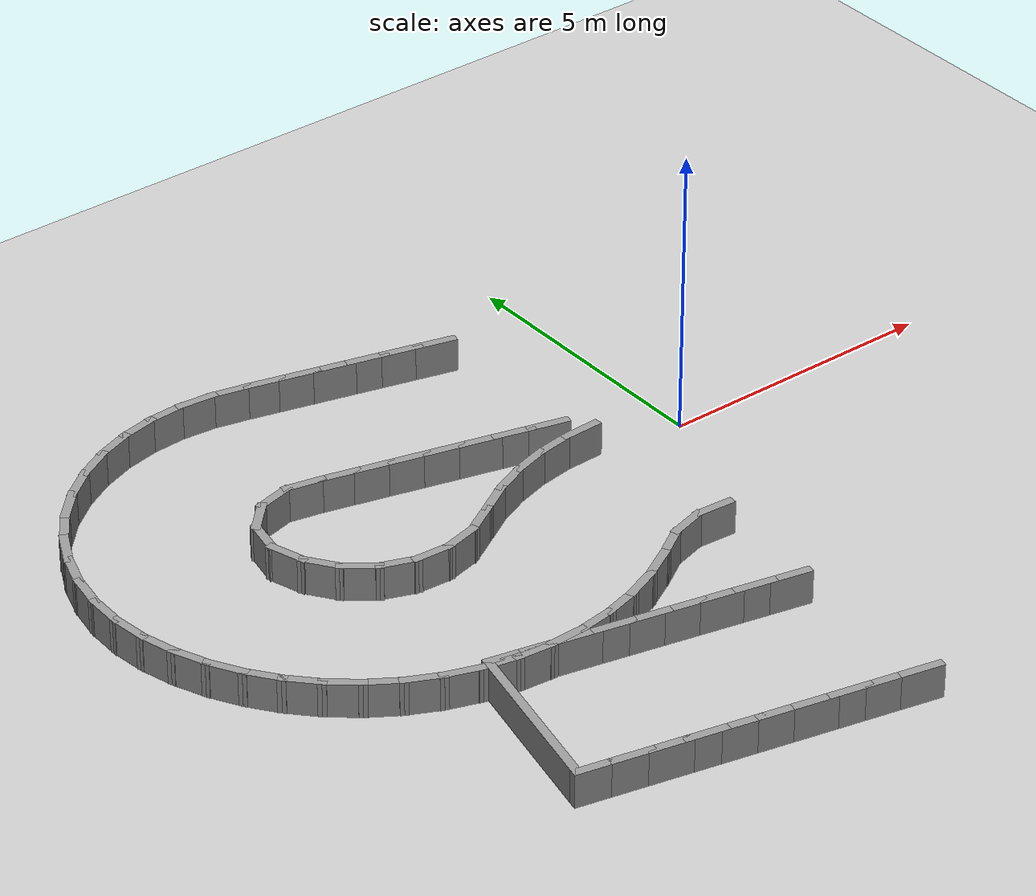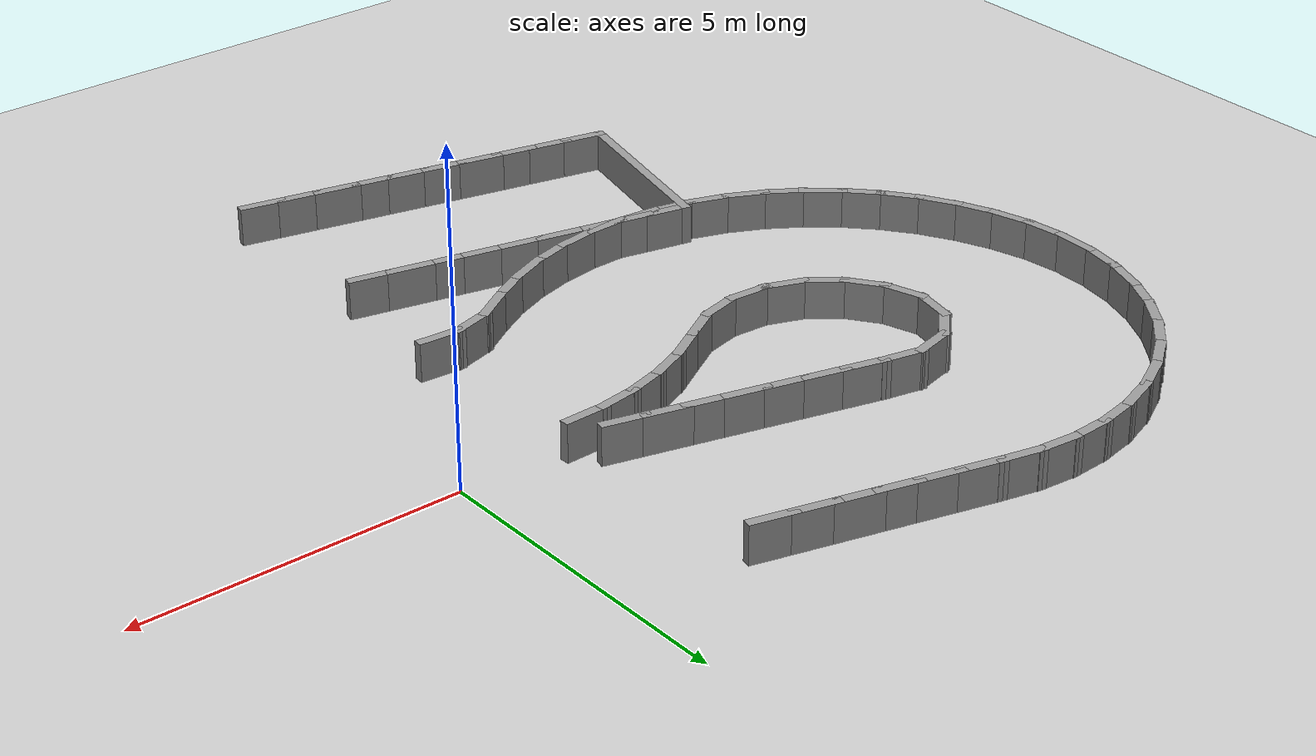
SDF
<sdf version="1.7">
 <world name="default">
  <model name="ground_plane">
   <static>1</static>
   <link name="link">
    <collision name="collision">
     <geometry><plane><normal>0 0 1</normal><size>100 100</size></plane></geometry>
     <surface><friction><ode><mu>100</mu><mu2>50</mu2></ode></friction></surface>
    </collision>
    <visual name="visual">
     <cast_shadows>0</cast_shadows>
     <geometry><plane><normal>0 0 1</normal><size>100 100</size></plane></geometry>
     <material>
      <script><uri>file://media/materials/scripts/gazebo.material</uri><name>Gazebo/Grey</name></script>
     </material>
    </visual>
   </link>
  </model>
  <model name="rand_turn_01">
   <link name="Wall_0">
    <collision name="Wall_0_Collision">
     <geometry><box><size>0.7500 0.1500 0.6000</size></box></geometry>
     <pose>0 0 0.3000 0 -0 0</pose>
    </collision>
    <visual name="Wall_0_Visual">
     <pose>0 0 0.3000 0 -0 0</pose>
     <geometry><box><size>0.7500 0.1500 0.6000</size></box></geometry>
     <material>
      <script><uri>file://media/materials/scripts/gazebo.material</uri><name>Gazebo/Grey</name></script>
      <ambient>1 1 1 1</ambient>
     </material>
    </visual>
    <pose>-6.5977 -3.8174 0 0 -0 -0.21750</pose>
   </link>
   <link name="Wall_1">
    <collision name="Wall_1_Collision">
     <geometry><box><size>0.7500 0.1500 0.6000</size></box></geometry>
     <pose>0 0 0.3000 0 -0 0</pose>
    </collision>
    <visual name="Wall_1_Visual">
     <pose>0 0 0.3000 0 -0 0</pose>
     <geometry><box><size>0.7500 0.1500 0.6000</size></box></geometry>
     <material>
      <script><uri>file://media/materials/scripts/gazebo.material</uri><name>Gazebo/Grey</name></script>
      <ambient>1 1 1 1</ambient>
     </material>
    </visual>
    <pose>-6.0118 -3.9469 0 0 -0 -0.21750</pose>
   </link>
   <link name="Wall_2">
    <collision name="Wall_2_Collision">
     <geometry><box><size>0.7500 0.1500 0.6000</size></box></geometry>
     <pose>0 0 0.3000 0 -0 0</pose>
    </collision>
    <visual name="Wall_2_Visual">
     <pose>0 0 0.3000 0 -0 0</pose>
     <geometry><box><size>0.7500 0.1500 0.6000</size></box></geometry>
     <material>
      <script><uri>file://media/materials/scripts/gazebo.material</uri><name>Gazebo/Grey</name></script>
      <ambient>1 1 1 1</ambient>
     </material>
    </visual>
    <pose>-5.4260 -4.0764 0 0 -0 -0.21750</pose>
   </link>
   <link name="Wall_3">
    <collision name="Wall_3_Collision">
     <geometry><box><size>0.7500 0.1500 0.6000</size></box></geometry>
     <pose>0 0 0.3000 0 -0 0</pose>
    </collision>
    <visual name="Wall_3_Visual">
     <pose>0 0 0.3000 0 -0 0</pose>
     <geometry><box><size>0.7500 0.1500 0.6000</size></box></geometry>
     <material>
      <script><uri>file://media/materials/scripts/gazebo.material</uri><name>Gazebo/Grey</name></script>
      <ambient>1 1 1 1</ambient>
     </material>
    </visual>
    <pose>-4.8401 -4.2058 0 0 -0 -0.21750</pose>
   </link>
   <link name="Wall_4">
    <collision name="Wall_4_Collision">
     <geometry><box><size>0.7500 0.1500 0.6000</size></box></geometry>
     <pose>0 0 0.3000 0 -0 0</pose>
    </collision>
    <visual name="Wall_4_Visual">
     <pose>0 0 0.3000 0 -0 0</pose>
     <geometry><box><size>0.7500 0.1500 0.6000</size></box></geometry>
     <material>
      <script><uri>file://media/materials/scripts/gazebo.material</uri><name>Gazebo/Grey</name></script>
      <ambient>1 1 1 1</ambient>
     </material>
    </visual>
    <pose>-4.2542 -4.3353 0 0 -0 -0.21750</pose>
   </link>
   <link name="Wall_5">
    <collision name="Wall_5_Collision">
     <geometry><box><size>0.7500 0.1500 0.6000</size></box></geometry>
     <pose>0 0 0.3000 0 -0 0</pose>
    </collision>
    <visual name="Wall_5_Visual">
     <pose>0 0 0.3000 0 -0 0</pose>
     <geometry><box><size>0.7500 0.1500 0.6000</size></box></geometry>
     <material>
      <script><uri>file://media/materials/scripts/gazebo.material</uri><name>Gazebo/Grey</name></script>
      <ambient>1 1 1 1</ambient>
     </material>
    </visual>
    <pose>-3.6684 -4.4648 0 0 -0 -0.21750</pose>
   </link>
   <link name="Wall_6">
    <collision name="Wall_6_Collision">
     <geometry><box><size>0.7500 0.1500 0.6000</size></box></geometry>
     <pose>0 0 0.3000 0 -0 0</pose>
    </collision>
    <visual name="Wall_6_Visual">
     <pose>0 0 0.3000 0 -0 0</pose>
     <geometry><box><size>0.7500 0.1500 0.6000</size></box></geometry>
     <material>
      <script><uri>file://media/materials/scripts/gazebo.material</uri><name>Gazebo/Grey</name></script>
      <ambient>1 1 1 1</ambient>
     </material>
    </visual>
    <pose>-3.0825 -4.5943 0 0 -0 -0.21750</pose>
   </link>
   <link name="Wall_7">
    <collision name="Wall_7_Collision">
     <geometry><box><size>0.7500 0.1500 0.6000</size></box></geometry>
     <pose>0 0 0.3000 0 -0 0</pose>
    </collision>
    <visual name="Wall_7_Visual">
     <pose>0 0 0.3000 0 -0 0</pose>
     <geometry><box><size>0.7500 0.1500 0.6000</size></box></geometry>
     <material>
      <script><uri>file://media/materials/scripts/gazebo.material</uri><name>Gazebo/Grey</name></script>
      <ambient>1 1 1 1</ambient>
     </material>
    </visual>
    <pose>-2.4967 -4.7237 0 0 -0 -0.21750</pose>
   </link>
   <link name="Wall_8">
    <collision name="Wall_8_Collision">
     <geometry><box><size>0.7500 0.1500 0.6000</size></box></geometry>
     <pose>0 0 0.3000 0 -0 0</pose>
    </collision>
    <visual name="Wall_8_Visual">
     <pose>0 0 0.3000 0 -0 0</pose>
     <geometry><box><size>0.7500 0.1500 0.6000</size></box></geometry>
     <material>
      <script><uri>file://media/materials/scripts/gazebo.material</uri><name>Gazebo/Grey</name></script>
      <ambient>1 1 1 1</ambient>
     </material>
    </visual>
    <pose>-1.9108 -4.8532 0 0 -0 -0.21750</pose>
   </link>
   <link name="Wall_16">
    <collision name="Wall_16_Collision">
     <geometry><box><size>0.7470 0.1500 0.6000</size></box></geometry>
     <pose>0 0 0.3000 0 -0 0</pose>
    </collision>
    <visual name="Wall_16_Visual">
     <pose>0 0 0.3000 0 -0 0</pose>
     <geometry><box><size>0.7470 0.1500 0.6000</size></box></geometry>
     <material>
      <script><uri>file://media/materials/scripts/gazebo.material</uri><name>Gazebo/Grey</name></script>
      <ambient>1 1 1 1</ambient>
     </material>
    </visual>
    <pose>-1.6446 -2.7495 0 0 -0 3.07132</pose>
   </link>
   <link name="Wall_17">
    <collision name="Wall_17_Collision">
     <geometry><box><size>0.7470 0.1500 0.6000</size></box></geometry>
     <pose>0 0 0.3000 0 -0 0</pose>
    </collision>
    <visual name="Wall_17_Visual">
     <pose>0 0 0.3000 0 -0 0</pose>
     <geometry><box><size>0.7470 0.1500 0.6000</size></box></geometry>
     <material>
      <script><uri>file://media/materials/scripts/gazebo.material</uri><name>Gazebo/Grey</name></script>
      <ambient>1 1 1 1</ambient>
     </material>
    </visual>
    <pose>-2.2299 -2.8090 0 0 -0 -2.86868</pose>
   </link>
   <link name="Wall_18">
    <collision name="Wall_18_Collision">
     <geometry><box><size>0.7492 0.1500 0.6000</size></box></geometry>
     <pose>0 0 0.3000 0 -0 0</pose>
    </collision>
    <visual name="Wall_18_Visual">
     <pose>0 0 0.3000 0 -0 0</pose>
     <geometry><box><size>0.7492 0.1500 0.6000</size></box></geometry>
     <material>
      <script><uri>file://media/materials/scripts/gazebo.material</uri><name>Gazebo/Grey</name></script>
      <ambient>1 1 1 1</ambient>
     </material>
    </visual>
    <pose>-2.7704 -3.0499 0 0 -0 -2.57645</pose>
   </link>
   <link name="Wall_19">
    <collision name="Wall_19_Collision">
     <geometry><box><size>0.7496 0.1500 0.6000</size></box></geometry>
     <pose>0 0 0.3000 0 -0 0</pose>
    </collision>
    <visual name="Wall_19_Visual">
     <pose>0 0 0.3000 0 -0 0</pose>
     <geometry><box><size>0.7496 0.1500 0.6000</size></box></geometry>
     <material>
      <script><uri>file://media/materials/scripts/gazebo.material</uri><name>Gazebo/Grey</name></script>
      <ambient>1 1 1 1</ambient>
     </material>
    </visual>
    <pose>-3.2849 -3.3568 0 0 -0 -2.63097</pose>
   </link>
   <link name="Wall_20">
    <collision name="Wall_20_Collision">
     <geometry><box><size>0.7496 0.1500 0.6000</size></box></geometry>
     <pose>0 0 0.3000 0 -0 0</pose>
    </collision>
    <visual name="Wall_20_Visual">
     <pose>0 0 0.3000 0 -0 0</pose>
     <geometry><box><size>0.7496 0.1500 0.6000</size></box></geometry>
     <material>
      <script><uri>file://media/materials/scripts/gazebo.material</uri><name>Gazebo/Grey</name></script>
      <ambient>1 1 1 1</ambient>
     </material>
    </visual>
    <pose>-3.8238 -3.6173 0 0 -0 -2.75171</pose>
   </link>
   <link name="Wall_21">
    <collision name="Wall_21_Collision">
     <geometry><box><size>0.7496 0.1500 0.6000</size></box></geometry>
     <pose>0 0 0.3000 0 -0 0</pose>
    </collision>
    <visual name="Wall_21_Visual">
     <pose>0 0 0.3000 0 -0 0</pose>
     <geometry><box><size>0.7496 0.1500 0.6000</size></box></geometry>
     <material>
      <script><uri>file://media/materials/scripts/gazebo.material</uri><name>Gazebo/Grey</name></script>
      <ambient>1 1 1 1</ambient>
     </material>
    </visual>
    <pose>-4.3901 -3.8110 0 0 -0 -2.87246</pose>
   </link>
   <link name="Wall_22">
    <collision name="Wall_22_Collision">
     <geometry><box><size>0.7496 0.1500 0.6000</size></box></geometry>
     <pose>0 0 0.3000 0 -0 0</pose>
    </collision>
    <visual name="Wall_22_Visual">
     <pose>0 0 0.3000 0 -0 0</pose>
     <geometry><box><size>0.7496 0.1500 0.6000</size></box></geometry>
     <material>
      <script><uri>file://media/materials/scripts/gazebo.material</uri><name>Gazebo/Grey</name></script>
      <ambient>1 1 1 1</ambient>
     </material>
    </visual>
    <pose>-4.9757 -3.9349 0 0 -0 -2.99349</pose>
   </link>
   <link name="Wall_23">
    <collision name="Wall_23_Collision">
     <geometry><box><size>0.7496 0.1500 0.6000</size></box></geometry>
     <pose>0 0 0.3000 0 -0 0</pose>
    </collision>
    <visual name="Wall_23_Visual">
     <pose>0 0 0.3000 0 -0 0</pose>
     <geometry><box><size>0.7496 0.1500 0.6000</size></box></geometry>
     <material>
      <script><uri>file://media/materials/scripts/gazebo.material</uri><name>Gazebo/Grey</name></script>
      <ambient>1 1 1 1</ambient>
     </material>
    </visual>
    <pose>-5.5719 -3.9870 0 0 -0 -3.11536</pose>
   </link>
   <link name="Wall_24">
    <collision name="Wall_24_Collision">
     <geometry><box><size>0.7496 0.1500 0.6000</size></box></geometry>
     <pose>0 0 0.3000 0 -0 0</pose>
    </collision>
    <visual name="Wall_24_Visual">
     <pose>0 0 0.3000 0 -0 0</pose>
     <geometry><box><size>0.7496 0.1500 0.6000</size></box></geometry>
     <material>
      <script><uri>file://media/materials/scripts/gazebo.material</uri><name>Gazebo/Grey</name></script>
      <ambient>1 1 1 1</ambient>
     </material>
    </visual>
    <pose>-6.1701 -3.9666 0 0 -0 3.04708</pose>
   </link>
   <link name="Wall_25">
    <collision name="Wall_25_Collision">
     <geometry><box><size>0.7496 0.1500 0.6000</size></box></geometry>
     <pose>0 0 0.3000 0 -0 0</pose>
    </collision>
    <visual name="Wall_25_Visual">
     <pose>0 0 0.3000 0 -0 0</pose>
     <geometry><box><size>0.7496 0.1500 0.6000</size></box></geometry>
     <material>
      <script><uri>file://media/materials/scripts/gazebo.material</uri><name>Gazebo/Grey</name></script>
      <ambient>1 1 1 1</ambient>
     </material>
    </visual>
    <pose>-6.7614 -3.8743 0 0 -0 2.92633</pose>
   </link>
   <link name="Wall_26">
    <collision name="Wall_26_Collision">
     <geometry><box><size>0.7496 0.1500 0.6000</size></box></geometry>
     <pose>0 0 0.3000 0 -0 0</pose>
    </collision>
    <visual name="Wall_26_Visual">
     <pose>0 0 0.3000 0 -0 0</pose>
     <geometry><box><size>0.7496 0.1500 0.6000</size></box></geometry>
     <material>
      <script><uri>file://media/materials/scripts/gazebo.material</uri><name>Gazebo/Grey</name></script>
      <ambient>1 1 1 1</ambient>
     </material>
    </visual>
    <pose>-7.3373 -3.7114 0 0 -0 2.80559</pose>
   </link>
   <link name="Wall_27">
    <collision name="Wall_27_Collision">
     <geometry><box><size>0.7496 0.1500 0.6000</size></box></geometry>
     <pose>0 0 0.3000 0 -0 0</pose>
    </collision>
    <visual name="Wall_27_Visual">
     <pose>0 0 0.3000 0 -0 0</pose>
     <geometry><box><size>0.7496 0.1500 0.6000</size></box></geometry>
     <material>
      <script><uri>file://media/materials/scripts/gazebo.material</uri><name>Gazebo/Grey</name></script>
      <ambient>1 1 1 1</ambient>
     </material>
    </visual>
    <pose>-7.8894 -3.4801 0 0 -0 2.68430</pose>
   </link>
   <link name="Wall_28">
    <collision name="Wall_28_Collision">
     <geometry><box><size>0.7496 0.1500 0.6000</size></box></geometry>
     <pose>0 0 0.3000 0 -0 0</pose>
    </collision>
    <visual name="Wall_28_Visual">
     <pose>0 0 0.3000 0 -0 0</pose>
     <geometry><box><size>0.7496 0.1500 0.6000</size></box></geometry>
     <material>
      <script><uri>file://media/materials/scripts/gazebo.material</uri><name>Gazebo/Grey</name></script>
      <ambient>1 1 1 1</ambient>
     </material>
    </visual>
    <pose>-8.4094 -3.1837 0 0 -0 2.56268</pose>
   </link>
   <link name="Wall_29">
    <collision name="Wall_29_Collision">
     <geometry><box><size>0.7496 0.1500 0.6000</size></box></geometry>
     <pose>0 0 0.3000 0 -0 0</pose>
    </collision>
    <visual name="Wall_29_Visual">
     <pose>0 0 0.3000 0 -0 0</pose>
     <geometry><box><size>0.7496 0.1500 0.6000</size></box></geometry>
     <material>
      <script><uri>file://media/materials/scripts/gazebo.material</uri><name>Gazebo/Grey</name></script>
      <ambient>1 1 1 1</ambient>
     </material>
    </visual>
    <pose>-8.8897 -2.8267 0 0 -0 2.44194</pose>
   </link>
   <link name="Wall_30">
    <collision name="Wall_30_Collision">
     <geometry><box><size>0.7496 0.1500 0.6000</size></box></geometry>
     <pose>0 0 0.3000 0 -0 0</pose>
    </collision>
    <visual name="Wall_30_Visual">
     <pose>0 0 0.3000 0 -0 0</pose>
     <geometry><box><size>0.7496 0.1500 0.6000</size></box></geometry>
     <material>
      <script><uri>file://media/materials/scripts/gazebo.material</uri><name>Gazebo/Grey</name></script>
      <ambient>1 1 1 1</ambient>
     </material>
    </visual>
    <pose>-9.3235 -2.4143 0 0 -0 2.32119</pose>
   </link>
   <link name="Wall_31">
    <collision name="Wall_31_Collision">
     <geometry><box><size>0.7496 0.1500 0.6000</size></box></geometry>
     <pose>0 0 0.3000 0 -0 0</pose>
    </collision>
    <visual name="Wall_31_Visual">
     <pose>0 0 0.3000 0 -0 0</pose>
     <geometry><box><size>0.7496 0.1500 0.6000</size></box></geometry>
     <material>
      <script><uri>file://media/materials/scripts/gazebo.material</uri><name>Gazebo/Grey</name></script>
      <ambient>1 1 1 1</ambient>
     </material>
    </visual>
    <pose>-9.7045 -1.9527 0 0 -0 2.20045</pose>
   </link>
   <link name="Wall_32">
    <collision name="Wall_32_Collision">
     <geometry><box><size>0.7496 0.1500 0.6000</size></box></geometry>
     <pose>0 0 0.3000 0 -0 0</pose>
    </collision>
    <visual name="Wall_32_Visual">
     <pose>0 0 0.3000 0 -0 0</pose>
     <geometry><box><size>0.7496 0.1500 0.6000</size></box></geometry>
     <material>
      <script><uri>file://media/materials/scripts/gazebo.material</uri><name>Gazebo/Grey</name></script>
      <ambient>1 1 1 1</ambient>
     </material>
    </visual>
    <pose>-10.0269 -1.4485 0 0 -0 2.07890</pose>
   </link>
   <link name="Wall_33">
    <collision name="Wall_33_Collision">
     <geometry><box><size>0.7496 0.1500 0.6000</size></box></geometry>
     <pose>0 0 0.3000 0 -0 0</pose>
    </collision>
    <visual name="Wall_33_Visual">
     <pose>0 0 0.3000 0 -0 0</pose>
     <geometry><box><size>0.7496 0.1500 0.6000</size></box></geometry>
     <material>
      <script><uri>file://media/materials/scripts/gazebo.material</uri><name>Gazebo/Grey</name></script>
      <ambient>1 1 1 1</ambient>
     </material>
    </visual>
    <pose>-10.2858 -0.9089 0 0 -0 1.95754</pose>
   </link>
   <link name="Wall_34">
    <collision name="Wall_34_Collision">
     <geometry><box><size>0.7495 0.1500 0.6000</size></box></geometry>
     <pose>0 0 0.3000 0 -0 0</pose>
    </collision>
    <visual name="Wall_34_Visual">
     <pose>0 0 0.3000 0 -0 0</pose>
     <geometry><box><size>0.7495 0.1500 0.6000</size></box></geometry>
     <material>
      <script><uri>file://media/materials/scripts/gazebo.material</uri><name>Gazebo/Grey</name></script>
      <ambient>1 1 1 1</ambient>
     </material>
    </visual>
    <pose>-10.4773 -0.3419 0 0 -0 1.83542</pose>
   </link>
   <link name="Wall_35">
    <collision name="Wall_35_Collision">
     <geometry><box><size>0.7494 0.1500 0.6000</size></box></geometry>
     <pose>0 0 0.3000 0 -0 0</pose>
    </collision>
    <visual name="Wall_35_Visual">
     <pose>0 0 0.3000 0 -0 0</pose>
     <geometry><box><size>0.7494 0.1500 0.6000</size></box></geometry>
     <material>
      <script><uri>file://media/materials/scripts/gazebo.material</uri><name>Gazebo/Grey</name></script>
      <ambient>1 1 1 1</ambient>
     </material>
    </visual>
    <pose>-10.5922 0.2449 0 0 -0 1.69281</pose>
   </link>
   <link name="Wall_36">
    <collision name="Wall_36_Collision">
     <geometry><box><size>0.7495 0.1500 0.6000</size></box></geometry>
     <pose>0 0 0.3000 0 -0 0</pose>
    </collision>
    <visual name="Wall_36_Visual">
     <pose>0 0 0.3000 0 -0 0</pose>
     <geometry><box><size>0.7495 0.1500 0.6000</size></box></geometry>
     <material>
      <script><uri>file://media/materials/scripts/gazebo.material</uri><name>Gazebo/Grey</name></script>
      <ambient>1 1 1 1</ambient>
     </material>
    </visual>
    <pose>-10.6208 0.8420 0 0 -0 1.54438</pose>
   </link>
   <link name="Wall_37">
    <collision name="Wall_37_Collision">
     <geometry><box><size>0.7494 0.1500 0.6000</size></box></geometry>
     <pose>0 0 0.3000 0 -0 0</pose>
    </collision>
    <visual name="Wall_37_Visual">
     <pose>0 0 0.3000 0 -0 0</pose>
     <geometry><box><size>0.7494 0.1500 0.6000</size></box></geometry>
     <material>
      <script><uri>file://media/materials/scripts/gazebo.material</uri><name>Gazebo/Grey</name></script>
      <ambient>1 1 1 1</ambient>
     </material>
    </visual>
    <pose>-10.5602 1.4367 0 0 -0 1.39420</pose>
   </link>
   <link name="Wall_38">
    <collision name="Wall_38_Collision">
     <geometry><box><size>0.7494 0.1500 0.6000</size></box></geometry>
     <pose>0 0 0.3000 0 -0 0</pose>
    </collision>
    <visual name="Wall_38_Visual">
     <pose>0 0 0.3000 0 -0 0</pose>
     <geometry><box><size>0.7494 0.1500 0.6000</size></box></geometry>
     <material>
      <script><uri>file://media/materials/scripts/gazebo.material</uri><name>Gazebo/Grey</name></script>
      <ambient>1 1 1 1</ambient>
     </material>
    </visual>
    <pose>-10.4119 2.0158 0 0 -0 1.24597</pose>
   </link>
   <link name="Wall_39">
    <collision name="Wall_39_Collision">
     <geometry><box><size>0.7494 0.1500 0.6000</size></box></geometry>
     <pose>0 0 0.3000 0 -0 0</pose>
    </collision>
    <visual name="Wall_39_Visual">
     <pose>0 0 0.3000 0 -0 0</pose>
     <geometry><box><size>0.7494 0.1500 0.6000</size></box></geometry>
     <material>
      <script><uri>file://media/materials/scripts/gazebo.material</uri><name>Gazebo/Grey</name></script>
      <ambient>1 1 1 1</ambient>
     </material>
    </visual>
    <pose>-10.1797 2.5666 0 0 -0 1.09773</pose>
   </link>
   <link name="Wall_40">
    <collision name="Wall_40_Collision">
     <geometry><box><size>0.7494 0.1500 0.6000</size></box></geometry>
     <pose>0 0 0.3000 0 -0 0</pose>
    </collision>
    <visual name="Wall_40_Visual">
     <pose>0 0 0.3000 0 -0 0</pose>
     <geometry><box><size>0.7494 0.1500 0.6000</size></box></geometry>
     <material>
      <script><uri>file://media/materials/scripts/gazebo.material</uri><name>Gazebo/Grey</name></script>
      <ambient>1 1 1 1</ambient>
     </material>
    </visual>
    <pose>-9.8687 3.0770 0 0 -0 0.94943</pose>
   </link>
   <link name="Wall_41">
    <collision name="Wall_41_Collision">
     <geometry><box><size>0.7494 0.1500 0.6000</size></box></geometry>
     <pose>0 0 0.3000 0 -0 0</pose>
    </collision>
    <visual name="Wall_41_Visual">
     <pose>0 0 0.3000 0 -0 0</pose>
     <geometry><box><size>0.7494 0.1500 0.6000</size></box></geometry>
     <material>
      <script><uri>file://media/materials/scripts/gazebo.material</uri><name>Gazebo/Grey</name></script>
      <ambient>1 1 1 1</ambient>
     </material>
    </visual>
    <pose>-9.4841 3.5344 0 0 -0 0.79378</pose>
   </link>
   <link name="Wall_42">
    <collision name="Wall_42_Collision">
     <geometry><box><size>0.7494 0.1500 0.6000</size></box></geometry>
     <pose>0 0 0.3000 0 -0 0</pose>
    </collision>
    <visual name="Wall_42_Visual">
     <pose>0 0 0.3000 0 -0 0</pose>
     <geometry><box><size>0.7494 0.1500 0.6000</size></box></geometry>
     <material>
      <script><uri>file://media/materials/scripts/gazebo.material</uri><name>Gazebo/Grey</name></script>
      <ambient>1 1 1 1</ambient>
     </material>
    </visual>
    <pose>-9.0342 3.9279 0 0 -0 0.64353</pose>
   </link>
   <link name="Wall_43">
    <collision name="Wall_43_Collision">
     <geometry><box><size>0.7494 0.1500 0.6000</size></box></geometry>
     <pose>0 0 0.3000 0 -0 0</pose>
    </collision>
    <visual name="Wall_43_Visual">
     <pose>0 0 0.3000 0 -0 0</pose>
     <geometry><box><size>0.7494 0.1500 0.6000</size></box></geometry>
     <material>
      <script><uri>file://media/materials/scripts/gazebo.material</uri><name>Gazebo/Grey</name></script>
      <ambient>1 1 1 1</ambient>
     </material>
    </visual>
    <pose>-8.5309 4.2505 0 0 -0 0.49657</pose>
   </link>
   <link name="Wall_44">
    <collision name="Wall_44_Collision">
     <geometry><box><size>0.7494 0.1500 0.6000</size></box></geometry>
     <pose>0 0 0.3000 0 -0 0</pose>
    </collision>
    <visual name="Wall_44_Visual">
     <pose>0 0 0.3000 0 -0 0</pose>
     <geometry><box><size>0.7494 0.1500 0.6000</size></box></geometry>
     <material>
      <script><uri>file://media/materials/scripts/gazebo.material</uri><name>Gazebo/Grey</name></script>
      <ambient>1 1 1 1</ambient>
     </material>
    </visual>
    <pose>-7.9859 4.4959 0 0 -0 0.34960</pose>
   </link>
   <link name="Wall_45">
    <collision name="Wall_45_Collision">
     <geometry><box><size>0.7494 0.1500 0.6000</size></box></geometry>
     <pose>0 0 0.3000 0 -0 0</pose>
    </collision>
    <visual name="Wall_45_Visual">
     <pose>0 0 0.3000 0 -0 0</pose>
     <geometry><box><size>0.7494 0.1500 0.6000</size></box></geometry>
     <material>
      <script><uri>file://media/materials/scripts/gazebo.material</uri><name>Gazebo/Grey</name></script>
      <ambient>1 1 1 1</ambient>
     </material>
    </visual>
    <pose>-7.4107 4.6589 0 0 -0 0.20264</pose>
   </link>
   <link name="Wall_46">
    <collision name="Wall_46_Collision">
     <geometry><box><size>0.7495 0.1500 0.6000</size></box></geometry>
     <pose>0 0 0.3000 0 -0 0</pose>
    </collision>
    <visual name="Wall_46_Visual">
     <pose>0 0 0.3000 0 -0 0</pose>
     <geometry><box><size>0.7495 0.1500 0.6000</size></box></geometry>
     <material>
      <script><uri>file://media/materials/scripts/gazebo.material</uri><name>Gazebo/Grey</name></script>
      <ambient>1 1 1 1</ambient>
     </material>
    </visual>
    <pose>-6.8179 4.7358 0 0 -0 0.05521</pose>
   </link>
   <link name="Wall_47">
    <collision name="Wall_47_Collision">
     <geometry><box><size>0.7494 0.1500 0.6000</size></box></geometry>
     <pose>0 0 0.3000 0 -0 0</pose>
    </collision>
    <visual name="Wall_47_Visual">
     <pose>0 0 0.3000 0 -0 0</pose>
     <geometry><box><size>0.7494 0.1500 0.6000</size></box></geometry>
     <material>
      <script><uri>file://media/materials/scripts/gazebo.material</uri><name>Gazebo/Grey</name></script>
      <ambient>1 1 1 1</ambient>
     </material>
    </visual>
    <pose>-6.2202 4.7244 0 0 -0 -0.09311</pose>
   </link>
   <link name="Wall_48">
    <collision name="Wall_48_Collision">
     <geometry><box><size>0.7497 0.1500 0.6000</size></box></geometry>
     <pose>0 0 0.3000 0 -0 0</pose>
    </collision>
    <visual name="Wall_48_Visual">
     <pose>0 0 0.3000 0 -0 0</pose>
     <geometry><box><size>0.7497 0.1500 0.6000</size></box></geometry>
     <material>
      <script><uri>file://media/materials/scripts/gazebo.material</uri><name>Gazebo/Grey</name></script>
      <ambient>1 1 1 1</ambient>
     </material>
    </visual>
    <pose>-5.6296 4.6290 0 0 -0 -0.22733</pose>
   </link>
   <link name="Wall_49">
    <collision name="Wall_49_Collision">
     <geometry><box><size>0.7500 0.1500 0.6000</size></box></geometry>
     <pose>0 0 0.3000 0 -0 0</pose>
    </collision>
    <visual name="Wall_49_Visual">
     <pose>0 0 0.3000 0 -0 0</pose>
     <geometry><box><size>0.7500 0.1500 0.6000</size></box></geometry>
     <material>
      <script><uri>file://media/materials/scripts/gazebo.material</uri><name>Gazebo/Grey</name></script>
      <ambient>1 1 1 1</ambient>
     </material>
    </visual>
    <pose>-5.0472 4.4857 0 0 -0 -0.25506</pose>
   </link>
   <link name="Wall_50">
    <collision name="Wall_50_Collision">
     <geometry><box><size>0.7500 0.1500 0.6000</size></box></geometry>
     <pose>0 0 0.3000 0 -0 0</pose>
    </collision>
    <visual name="Wall_50_Visual">
     <pose>0 0 0.3000 0 -0 0</pose>
     <geometry><box><size>0.7500 0.1500 0.6000</size></box></geometry>
     <material>
      <script><uri>file://media/materials/scripts/gazebo.material</uri><name>Gazebo/Grey</name></script>
      <ambient>1 1 1 1</ambient>
     </material>
    </visual>
    <pose>-4.4666 4.3343 0 0 -0 -0.25506</pose>
   </link>
   <link name="Wall_51">
    <collision name="Wall_51_Collision">
     <geometry><box><size>0.7500 0.1500 0.6000</size></box></geometry>
     <pose>0 0 0.3000 0 -0 0</pose>
    </collision>
    <visual name="Wall_51_Visual">
     <pose>0 0 0.3000 0 -0 0</pose>
     <geometry><box><size>0.7500 0.1500 0.6000</size></box></geometry>
     <material>
      <script><uri>file://media/materials/scripts/gazebo.material</uri><name>Gazebo/Grey</name></script>
      <ambient>1 1 1 1</ambient>
     </material>
    </visual>
    <pose>-3.8860 4.1829 0 0 -0 -0.25506</pose>
   </link>
   <link name="Wall_52">
    <collision name="Wall_52_Collision">
     <geometry><box><size>0.7500 0.1500 0.6000</size></box></geometry>
     <pose>0 0 0.3000 0 -0 0</pose>
    </collision>
    <visual name="Wall_52_Visual">
     <pose>0 0 0.3000 0 -0 0</pose>
     <geometry><box><size>0.7500 0.1500 0.6000</size></box></geometry>
     <material>
      <script><uri>file://media/materials/scripts/gazebo.material</uri><name>Gazebo/Grey</name></script>
      <ambient>1 1 1 1</ambient>
     </material>
    </visual>
    <pose>-3.3054 4.0316 0 0 -0 -0.25506</pose>
   </link>
   <link name="Wall_53">
    <collision name="Wall_53_Collision">
     <geometry><box><size>0.7500 0.1500 0.6000</size></box></geometry>
     <pose>0 0 0.3000 0 -0 0</pose>
    </collision>
    <visual name="Wall_53_Visual">
     <pose>0 0 0.3000 0 -0 0</pose>
     <geometry><box><size>0.7500 0.1500 0.6000</size></box></geometry>
     <material>
      <script><uri>file://media/materials/scripts/gazebo.material</uri><name>Gazebo/Grey</name></script>
      <ambient>1 1 1 1</ambient>
     </material>
    </visual>
    <pose>-2.7248 3.8802 0 0 -0 -0.25506</pose>
   </link>
   <link name="Wall_54">
    <collision name="Wall_54_Collision">
     <geometry><box><size>0.7500 0.1500 0.6000</size></box></geometry>
     <pose>0 0 0.3000 0 -0 0</pose>
    </collision>
    <visual name="Wall_54_Visual">
     <pose>0 0 0.3000 0 -0 0</pose>
     <geometry><box><size>0.7500 0.1500 0.6000</size></box></geometry>
     <material>
      <script><uri>file://media/materials/scripts/gazebo.material</uri><name>Gazebo/Grey</name></script>
      <ambient>1 1 1 1</ambient>
     </material>
    </visual>
    <pose>-2.1442 3.7288 0 0 -0 -0.25506</pose>
   </link>
   <link name="Wall_79">
    <collision name="Wall_79_Collision">
     <geometry><box><size>0.7500 0.1500 0.6000</size></box></geometry>
     <pose>0 0 0.3000 0 -0 0</pose>
    </collision>
    <visual name="Wall_79_Visual">
     <pose>0 0 0.3000 0 -0 0</pose>
     <geometry><box><size>0.7500 0.1500 0.6000</size></box></geometry>
     <material>
      <script><uri>file://media/materials/scripts/gazebo.material</uri><name>Gazebo/Grey</name></script>
      <ambient>1 1 1 1</ambient>
     </material>
    </visual>
    <pose>-7.2369 -6.7095 0 0 -0 -0.21750</pose>
   </link>
   <link name="Wall_80">
    <collision name="Wall_80_Collision">
     <geometry><box><size>0.7500 0.1500 0.6000</size></box></geometry>
     <pose>0 0 0.3000 0 -0 0</pose>
    </collision>
    <visual name="Wall_80_Visual">
     <pose>0 0 0.3000 0 -0 0</pose>
     <geometry><box><size>0.7500 0.1500 0.6000</size></box></geometry>
     <material>
      <script><uri>file://media/materials/scripts/gazebo.material</uri><name>Gazebo/Grey</name></script>
      <ambient>1 1 1 1</ambient>
     </material>
    </visual>
    <pose>-6.6510 -6.8390 0 0 -0 -0.21750</pose>
   </link>
   <link name="Wall_81">
    <collision name="Wall_81_Collision">
     <geometry><box><size>0.7500 0.1500 0.6000</size></box></geometry>
     <pose>0 0 0.3000 0 -0 0</pose>
    </collision>
    <visual name="Wall_81_Visual">
     <pose>0 0 0.3000 0 -0 0</pose>
     <geometry><box><size>0.7500 0.1500 0.6000</size></box></geometry>
     <material>
      <script><uri>file://media/materials/scripts/gazebo.material</uri><name>Gazebo/Grey</name></script>
      <ambient>1 1 1 1</ambient>
     </material>
    </visual>
    <pose>-6.0651 -6.9685 0 0 -0 -0.21750</pose>
   </link>
   <link name="Wall_82">
    <collision name="Wall_82_Collision">
     <geometry><box><size>0.7500 0.1500 0.6000</size></box></geometry>
     <pose>0 0 0.3000 0 -0 0</pose>
    </collision>
    <visual name="Wall_82_Visual">
     <pose>0 0 0.3000 0 -0 0</pose>
     <geometry><box><size>0.7500 0.1500 0.6000</size></box></geometry>
     <material>
      <script><uri>file://media/materials/scripts/gazebo.material</uri><name>Gazebo/Grey</name></script>
      <ambient>1 1 1 1</ambient>
     </material>
    </visual>
    <pose>-5.4793 -7.0979 0 0 -0 -0.21750</pose>
   </link>
   <link name="Wall_83">
    <collision name="Wall_83_Collision">
     <geometry><box><size>0.7500 0.1500 0.6000</size></box></geometry>
     <pose>0 0 0.3000 0 -0 0</pose>
    </collision>
    <visual name="Wall_83_Visual">
     <pose>0 0 0.3000 0 -0 0</pose>
     <geometry><box><size>0.7500 0.1500 0.6000</size></box></geometry>
     <material>
      <script><uri>file://media/materials/scripts/gazebo.material</uri><name>Gazebo/Grey</name></script>
      <ambient>1 1 1 1</ambient>
     </material>
    </visual>
    <pose>-4.8934 -7.2274 0 0 -0 -0.21750</pose>
   </link>
   <link name="Wall_84">
    <collision name="Wall_84_Collision">
     <geometry><box><size>0.7500 0.1500 0.6000</size></box></geometry>
     <pose>0 0 0.3000 0 -0 0</pose>
    </collision>
    <visual name="Wall_84_Visual">
     <pose>0 0 0.3000 0 -0 0</pose>
     <geometry><box><size>0.7500 0.1500 0.6000</size></box></geometry>
     <material>
      <script><uri>file://media/materials/scripts/gazebo.material</uri><name>Gazebo/Grey</name></script>
      <ambient>1 1 1 1</ambient>
     </material>
    </visual>
    <pose>-4.3075 -7.3569 0 0 -0 -0.21750</pose>
   </link>
   <link name="Wall_85">
    <collision name="Wall_85_Collision">
     <geometry><box><size>0.7500 0.1500 0.6000</size></box></geometry>
     <pose>0 0 0.3000 0 -0 0</pose>
    </collision>
    <visual name="Wall_85_Visual">
     <pose>0 0 0.3000 0 -0 0</pose>
     <geometry><box><size>0.7500 0.1500 0.6000</size></box></geometry>
     <material>
      <script><uri>file://media/materials/scripts/gazebo.material</uri><name>Gazebo/Grey</name></script>
      <ambient>1 1 1 1</ambient>
     </material>
    </visual>
    <pose>-3.7217 -7.4864 0 0 -0 -0.21750</pose>
   </link>
   <link name="Wall_86">
    <collision name="Wall_86_Collision">
     <geometry><box><size>0.7500 0.1500 0.6000</size></box></geometry>
     <pose>0 0 0.3000 0 -0 0</pose>
    </collision>
    <visual name="Wall_86_Visual">
     <pose>0 0 0.3000 0 -0 0</pose>
     <geometry><box><size>0.7500 0.1500 0.6000</size></box></geometry>
     <material>
      <script><uri>file://media/materials/scripts/gazebo.material</uri><name>Gazebo/Grey</name></script>
      <ambient>1 1 1 1</ambient>
     </material>
    </visual>
    <pose>-3.1358 -7.6158 0 0 -0 -0.21750</pose>
   </link>
   <link name="Wall_87">
    <collision name="Wall_87_Collision">
     <geometry><box><size>0.7500 0.1500 0.6000</size></box></geometry>
     <pose>0 0 0.3000 0 -0 0</pose>
    </collision>
    <visual name="Wall_87_Visual">
     <pose>0 0 0.3000 0 -0 0</pose>
     <geometry><box><size>0.7500 0.1500 0.6000</size></box></geometry>
     <material>
      <script><uri>file://media/materials/scripts/gazebo.material</uri><name>Gazebo/Grey</name></script>
      <ambient>1 1 1 1</ambient>
     </material>
    </visual>
    <pose>-2.5499 -7.7453 0 0 -0 -0.21750</pose>
   </link>
   <link name="Wall_88">
    <collision name="Wall_88_Collision">
     <geometry><box><size>0.7500 0.1500 0.6000</size></box></geometry>
     <pose>0 0 0.3000 0 -0 0</pose>
    </collision>
    <visual name="Wall_88_Visual">
     <pose>0 0 0.3000 0 -0 0</pose>
     <geometry><box><size>0.7500 0.1500 0.6000</size></box></geometry>
     <material>
      <script><uri>file://media/materials/scripts/gazebo.material</uri><name>Gazebo/Grey</name></script>
      <ambient>1 1 1 1</ambient>
     </material>
    </visual>
    <pose>-1.9641 -7.8748 0 0 -0 -0.21750</pose>
   </link>
   <link name="Wall_112">
    <collision name="Wall_112_Collision">
     <geometry><box><size>0.7496 0.1500 0.6000</size></box></geometry>
     <pose>0 0 0.3000 0 -0 0</pose>
    </collision>
    <visual name="Wall_112_Visual">
     <pose>0 0 0.3000 0 -0 0</pose>
     <geometry><box><size>0.7496 0.1500 0.6000</size></box></geometry>
     <material>
      <script><uri>file://media/materials/scripts/gazebo.material</uri><name>Gazebo/Grey</name></script>
      <ambient>1 1 1 1</ambient>
     </material>
    </visual>
    <pose>-1.8939 0.2309 0 0 -0 -3.11462</pose>
   </link>
   <link name="Wall_113">
    <collision name="Wall_113_Collision">
     <geometry><box><size>0.7496 0.1500 0.6000</size></box></geometry>
     <pose>0 0 0.3000 0 -0 0</pose>
    </collision>
    <visual name="Wall_113_Visual">
     <pose>0 0 0.3000 0 -0 0</pose>
     <geometry><box><size>0.7496 0.1500 0.6000</size></box></geometry>
     <material>
      <script><uri>file://media/materials/scripts/gazebo.material</uri><name>Gazebo/Grey</name></script>
      <ambient>1 1 1 1</ambient>
     </material>
    </visual>
    <pose>-2.4898 0.1767 0 0 -0 -2.98711</pose>
   </link>
   <link name="Wall_114">
    <collision name="Wall_114_Collision">
     <geometry><box><size>0.7496 0.1500 0.6000</size></box></geometry>
     <pose>0 0 0.3000 0 -0 0</pose>
    </collision>
    <visual name="Wall_114_Visual">
     <pose>0 0 0.3000 0 -0 0</pose>
     <geometry><box><size>0.7496 0.1500 0.6000</size></box></geometry>
     <material>
      <script><uri>file://media/materials/scripts/gazebo.material</uri><name>Gazebo/Grey</name></script>
      <ambient>1 1 1 1</ambient>
     </material>
    </visual>
    <pose>-3.0740 0.0470 0 0 -0 -2.85918</pose>
   </link>
   <link name="Wall_115">
    <collision name="Wall_115_Collision">
     <geometry><box><size>0.7496 0.1500 0.6000</size></box></geometry>
     <pose>0 0 0.3000 0 -0 0</pose>
    </collision>
    <visual name="Wall_115_Visual">
     <pose>0 0 0.3000 0 -0 0</pose>
     <geometry><box><size>0.7496 0.1500 0.6000</size></box></geometry>
     <material>
      <script><uri>file://media/materials/scripts/gazebo.material</uri><name>Gazebo/Grey</name></script>
      <ambient>1 1 1 1</ambient>
     </material>
    </visual>
    <pose>-3.6369 -0.1559 0 0 -0 -2.73189</pose>
   </link>
   <link name="Wall_116">
    <collision name="Wall_116_Collision">
     <geometry><box><size>0.7496 0.1500 0.6000</size></box></geometry>
     <pose>0 0 0.3000 0 -0 0</pose>
    </collision>
    <visual name="Wall_116_Visual">
     <pose>0 0 0.3000 0 -0 0</pose>
     <geometry><box><size>0.7496 0.1500 0.6000</size></box></geometry>
     <material>
      <script><uri>file://media/materials/scripts/gazebo.material</uri><name>Gazebo/Grey</name></script>
      <ambient>1 1 1 1</ambient>
     </material>
    </visual>
    <pose>-4.1694 -0.4287 0 0 -0 -2.60469</pose>
   </link>
   <link name="Wall_117">
    <collision name="Wall_117_Collision">
     <geometry><box><size>0.7484 0.1500 0.6000</size></box></geometry>
     <pose>0 0 0.3000 0 -0 0</pose>
    </collision>
    <visual name="Wall_117_Visual">
     <pose>0 0 0.3000 0 -0 0</pose>
     <geometry><box><size>0.7484 0.1500 0.6000</size></box></geometry>
     <material>
      <script><uri>file://media/materials/scripts/gazebo.material</uri><name>Gazebo/Grey</name></script>
      <ambient>1 1 1 1</ambient>
     </material>
    </visual>
    <pose>-4.6850 -0.7336 0 0 -0 -2.61040</pose>
   </link>
   <link name="Wall_118">
    <collision name="Wall_118_Collision">
     <geometry><box><size>0.7477 0.1500 0.6000</size></box></geometry>
     <pose>0 0 0.3000 0 -0 0</pose>
    </collision>
    <visual name="Wall_118_Visual">
     <pose>0 0 0.3000 0 -0 0</pose>
     <geometry><box><size>0.7477 0.1500 0.6000</size></box></geometry>
     <material>
      <script><uri>file://media/materials/scripts/gazebo.material</uri><name>Gazebo/Grey</name></script>
      <ambient>1 1 1 1</ambient>
     </material>
    </visual>
    <pose>-5.2332 -0.9565 0 0 -0 -2.90026</pose>
   </link>
   <link name="Wall_119">
    <collision name="Wall_119_Collision">
     <geometry><box><size>0.7477 0.1500 0.6000</size></box></geometry>
     <pose>0 0 0.3000 0 -0 0</pose>
    </collision>
    <visual name="Wall_119_Visual">
     <pose>0 0 0.3000 0 -0 0</pose>
     <geometry><box><size>0.7477 0.1500 0.6000</size></box></geometry>
     <material>
      <script><uri>file://media/materials/scripts/gazebo.material</uri><name>Gazebo/Grey</name></script>
      <ambient>1 1 1 1</ambient>
     </material>
    </visual>
    <pose>-5.8217 -1.0101 0 0 -0 3.08176</pose>
   </link>
   <link name="Wall_120">
    <collision name="Wall_120_Collision">
     <geometry><box><size>0.7477 0.1500 0.6000</size></box></geometry>
     <pose>0 0 0.3000 0 -0 0</pose>
    </collision>
    <visual name="Wall_120_Visual">
     <pose>0 0 0.3000 0 -0 0</pose>
     <geometry><box><size>0.7477 0.1500 0.6000</size></box></geometry>
     <material>
      <script><uri>file://media/materials/scripts/gazebo.material</uri><name>Gazebo/Grey</name></script>
      <ambient>1 1 1 1</ambient>
     </material>
    </visual>
    <pose>-6.3997 -0.8869 0 0 -0 2.78140</pose>
   </link>
   <link name="Wall_121">
    <collision name="Wall_121_Collision">
     <geometry><box><size>0.7477 0.1500 0.6000</size></box></geometry>
     <pose>0 0 0.3000 0 -0 0</pose>
    </collision>
    <visual name="Wall_121_Visual">
     <pose>0 0 0.3000 0 -0 0</pose>
     <geometry><box><size>0.7477 0.1500 0.6000</size></box></geometry>
     <material>
      <script><uri>file://media/materials/scripts/gazebo.material</uri><name>Gazebo/Grey</name></script>
      <ambient>1 1 1 1</ambient>
     </material>
    </visual>
    <pose>-6.9153 -0.5981 0 0 -0 2.48049</pose>
   </link>
   <link name="Wall_122">
    <collision name="Wall_122_Collision">
     <geometry><box><size>0.7477 0.1500 0.6000</size></box></geometry>
     <pose>0 0 0.3000 0 -0 0</pose>
    </collision>
    <visual name="Wall_122_Visual">
     <pose>0 0 0.3000 0 -0 0</pose>
     <geometry><box><size>0.7477 0.1500 0.6000</size></box></geometry>
     <material>
      <script><uri>file://media/materials/scripts/gazebo.material</uri><name>Gazebo/Grey</name></script>
      <ambient>1 1 1 1</ambient>
     </material>
    </visual>
    <pose>-7.3221 -0.1694 0 0 -0 2.17988</pose>
   </link>
   <link name="Wall_123">
    <collision name="Wall_123_Collision">
     <geometry><box><size>0.7468 0.1500 0.6000</size></box></geometry>
     <pose>0 0 0.3000 0 -0 0</pose>
    </collision>
    <visual name="Wall_123_Visual">
     <pose>0 0 0.3000 0 -0 0</pose>
     <geometry><box><size>0.7468 0.1500 0.6000</size></box></geometry>
     <material>
      <script><uri>file://media/materials/scripts/gazebo.material</uri><name>Gazebo/Grey</name></script>
      <ambient>1 1 1 1</ambient>
     </material>
    </visual>
    <pose>-7.5806 0.3609 0 0 -0 1.86837</pose>
   </link>
   <link name="Wall_124">
    <collision name="Wall_124_Collision">
     <geometry><box><size>0.7422 0.1500 0.6000</size></box></geometry>
     <pose>0 0 0.3000 0 -0 0</pose>
    </collision>
    <visual name="Wall_124_Visual">
     <pose>0 0 0.3000 0 -0 0</pose>
     <geometry><box><size>0.7422 0.1500 0.6000</size></box></geometry>
     <material>
      <script><uri>file://media/materials/scripts/gazebo.material</uri><name>Gazebo/Grey</name></script>
      <ambient>1 1 1 1</ambient>
     </material>
    </visual>
    <pose>-7.6097 0.9365 0 0 -0 1.37226</pose>
   </link>
   <link name="Wall_125">
    <collision name="Wall_125_Collision">
     <geometry><box><size>0.7410 0.1500 0.6000</size></box></geometry>
     <pose>0 0 0.3000 0 -0 0</pose>
    </collision>
    <visual name="Wall_125_Visual">
     <pose>0 0 0.3000 0 -0 0</pose>
     <geometry><box><size>0.7410 0.1500 0.6000</size></box></geometry>
     <material>
      <script><uri>file://media/materials/scripts/gazebo.material</uri><name>Gazebo/Grey</name></script>
      <ambient>1 1 1 1</ambient>
     </material>
    </visual>
    <pose>-7.3448 1.4381 0 0 -0 0.79704</pose>
   </link>
   <link name="Wall_126">
    <collision name="Wall_126_Collision">
     <geometry><box><size>0.7427 0.1500 0.6000</size></box></geometry>
     <pose>0 0 0.3000 0 -0 0</pose>
    </collision>
    <visual name="Wall_126_Visual">
     <pose>0 0 0.3000 0 -0 0</pose>
     <geometry><box><size>0.7427 0.1500 0.6000</size></box></geometry>
     <material>
      <script><uri>file://media/materials/scripts/gazebo.material</uri><name>Gazebo/Grey</name></script>
      <ambient>1 1 1 1</ambient>
     </material>
    </visual>
    <pose>-6.8505 1.7201 0 0 -0 0.24056</pose>
   </link>
   <link name="Wall_127">
    <collision name="Wall_127_Collision">
     <geometry><box><size>0.7485 0.1500 0.6000</size></box></geometry>
     <pose>0 0 0.3000 0 -0 0</pose>
    </collision>
    <visual name="Wall_127_Visual">
     <pose>0 0 0.3000 0 -0 0</pose>
     <geometry><box><size>0.7485 0.1500 0.6000</size></box></geometry>
     <material>
      <script><uri>file://media/materials/scripts/gazebo.material</uri><name>Gazebo/Grey</name></script>
      <ambient>1 1 1 1</ambient>
     </material>
    </visual>
    <pose>-6.2698 1.7290 0 0 -0 -0.20768</pose>
   </link>
   <link name="Wall_128">
    <collision name="Wall_128_Collision">
     <geometry><box><size>0.7500 0.1500 0.6000</size></box></geometry>
     <pose>0 0 0.3000 0 -0 0</pose>
    </collision>
    <visual name="Wall_128_Visual">
     <pose>0 0 0.3000 0 -0 0</pose>
     <geometry><box><size>0.7500 0.1500 0.6000</size></box></geometry>
     <material>
      <script><uri>file://media/materials/scripts/gazebo.material</uri><name>Gazebo/Grey</name></script>
      <ambient>1 1 1 1</ambient>
     </material>
    </visual>
    <pose>-5.6867 1.5916 0 0 -0 -0.25506</pose>
   </link>
   <link name="Wall_129">
    <collision name="Wall_129_Collision">
     <geometry><box><size>0.7500 0.1500 0.6000</size></box></geometry>
     <pose>0 0 0.3000 0 -0 0</pose>
    </collision>
    <visual name="Wall_129_Visual">
     <pose>0 0 0.3000 0 -0 0</pose>
     <geometry><box><size>0.7500 0.1500 0.6000</size></box></geometry>
     <material>
      <script><uri>file://media/materials/scripts/gazebo.material</uri><name>Gazebo/Grey</name></script>
      <ambient>1 1 1 1</ambient>
     </material>
    </visual>
    <pose>-5.1061 1.4402 0 0 -0 -0.25506</pose>
   </link>
   <link name="Wall_130">
    <collision name="Wall_130_Collision">
     <geometry><box><size>0.7500 0.1500 0.6000</size></box></geometry>
     <pose>0 0 0.3000 0 -0 0</pose>
    </collision>
    <visual name="Wall_130_Visual">
     <pose>0 0 0.3000 0 -0 0</pose>
     <geometry><box><size>0.7500 0.1500 0.6000</size></box></geometry>
     <material>
      <script><uri>file://media/materials/scripts/gazebo.material</uri><name>Gazebo/Grey</name></script>
      <ambient>1 1 1 1</ambient>
     </material>
    </visual>
    <pose>-4.5255 1.2888 0 0 -0 -0.25506</pose>
   </link>
   <link name="Wall_131">
    <collision name="Wall_131_Collision">
     <geometry><box><size>0.7500 0.1500 0.6000</size></box></geometry>
     <pose>0 0 0.3000 0 -0 0</pose>
    </collision>
    <visual name="Wall_131_Visual">
     <pose>0 0 0.3000 0 -0 0</pose>
     <geometry><box><size>0.7500 0.1500 0.6000</size></box></geometry>
     <material>
      <script><uri>file://media/materials/scripts/gazebo.material</uri><name>Gazebo/Grey</name></script>
      <ambient>1 1 1 1</ambient>
     </material>
    </visual>
    <pose>-3.9449 1.1374 0 0 -0 -0.25506</pose>
   </link>
   <link name="Wall_132">
    <collision name="Wall_132_Collision">
     <geometry><box><size>0.7500 0.1500 0.6000</size></box></geometry>
     <pose>0 0 0.3000 0 -0 0</pose>
    </collision>
    <visual name="Wall_132_Visual">
     <pose>0 0 0.3000 0 -0 0</pose>
     <geometry><box><size>0.7500 0.1500 0.6000</size></box></geometry>
     <material>
      <script><uri>file://media/materials/scripts/gazebo.material</uri><name>Gazebo/Grey</name></script>
      <ambient>1 1 1 1</ambient>
     </material>
    </visual>
    <pose>-3.3643 0.9860 0 0 -0 -0.25506</pose>
   </link>
   <link name="Wall_133">
    <collision name="Wall_133_Collision">
     <geometry><box><size>0.7500 0.1500 0.6000</size></box></geometry>
     <pose>0 0 0.3000 0 -0 0</pose>
    </collision>
    <visual name="Wall_133_Visual">
     <pose>0 0 0.3000 0 -0 0</pose>
     <geometry><box><size>0.7500 0.1500 0.6000</size></box></geometry>
     <material>
      <script><uri>file://media/materials/scripts/gazebo.material</uri><name>Gazebo/Grey</name></script>
      <ambient>1 1 1 1</ambient>
     </material>
    </visual>
    <pose>-2.7838 0.8347 0 0 -0 -0.25506</pose>
   </link>
   <link name="Wall_134">
    <collision name="Wall_134_Collision">
     <geometry><box><size>0.7500 0.1500 0.6000</size></box></geometry>
     <pose>0 0 0.3000 0 -0 0</pose>
    </collision>
    <visual name="Wall_134_Visual">
     <pose>0 0 0.3000 0 -0 0</pose>
     <geometry><box><size>0.7500 0.1500 0.6000</size></box></geometry>
     <material>
      <script><uri>file://media/materials/scripts/gazebo.material</uri><name>Gazebo/Grey</name></script>
      <ambient>1 1 1 1</ambient>
     </material>
    </visual>
    <pose>-2.2032 0.6833 0 0 -0 -0.25506</pose>
   </link>
   <link name="Wall_162">
    <collision name="Wall_162_Collision">
     <geometry><box><size>3.1119 0.1500 0.6000</size></box></geometry>
     <pose>0 0 0.3000 0 -0 0</pose>
    </collision>
    <visual name="Wall_162_Visual">
     <pose>0 0 0.3000 0 -0 0</pose>
     <geometry><box><size>3.1119 0.1500 0.6000</size></box></geometry>
     <material>
      <script><uri>file://media/materials/scripts/gazebo.material</uri><name>Gazebo/Grey</name></script>
      <ambient>1 1 1 1</ambient>
     </material>
    </visual>
    <pose>-7.2102 -5.1987 0 0 -0 1.35329</pose>
   </link>
   <static>1</static>
  </model>
 </world>
</sdf>
